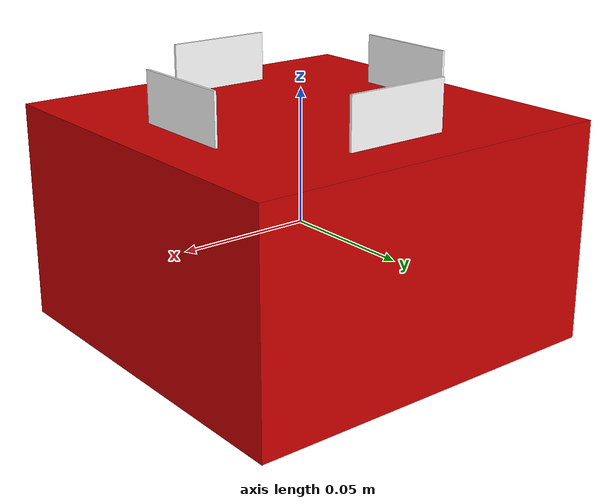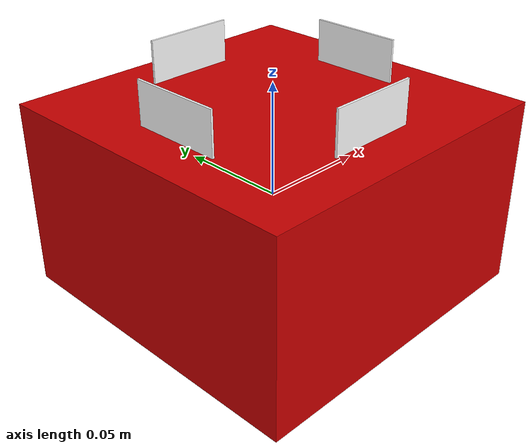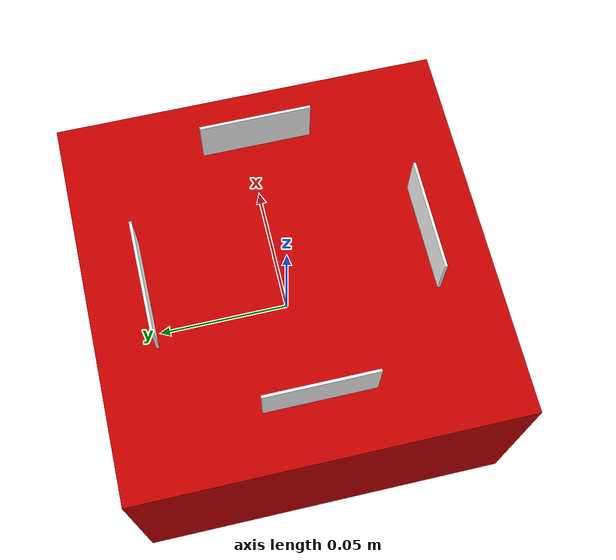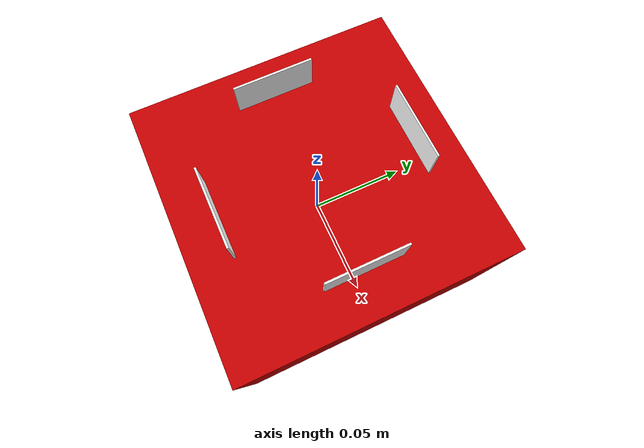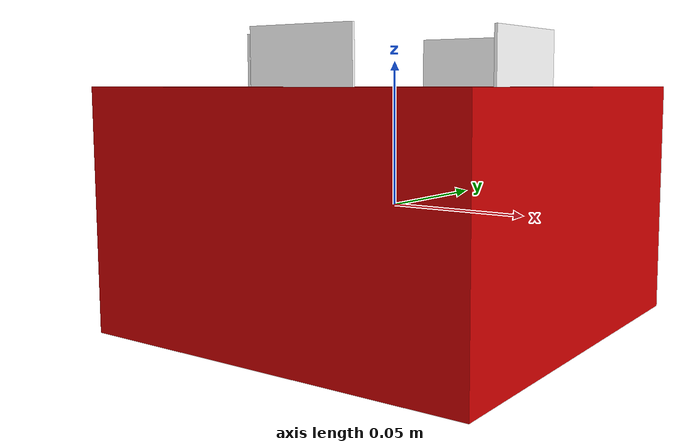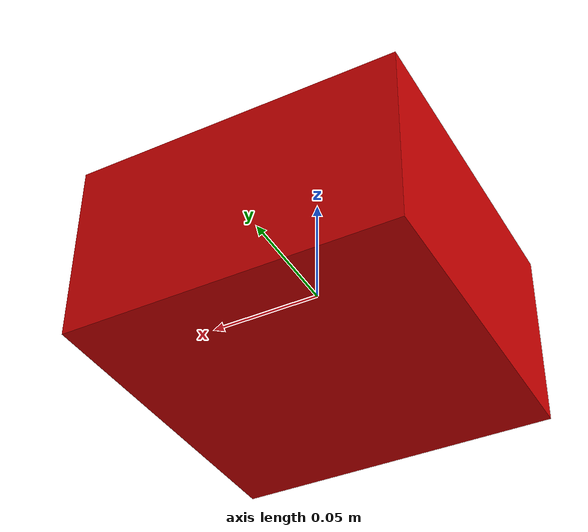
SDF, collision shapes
<?xml version="1.0" ?>
<sdf version="1.7">
  <model name="red_goal_3">

    <!-- locked postiton? -->
    <static>true</static>

    <link name="link">
      <!--pose of link relative to model-->
      <pose>0 0 0 0 0 0</pose>

      <!-- visual model-->
      <visual name="visual">
          <geometry>
          <mesh>
            <uri>model://red_goal_3/red_goal.gltf</uri>
          </mesh>
        </geometry>
            <material> <!-- red -->
              <ambient>0.80, 0.0, 0.0 1.0</ambient>
              <diffuse>0.80, 0.0, 0.0 1.0</diffuse>
              <specular>0.1 0.1 0.1 1.0</specular>
              <emissive>0 0 0 1</emissive>
          </material>
      </visual>

      <!-- collision geometry-->
      <collision name="collision">
        <geometry>
            <box>
                <size>0.1426 0.1426 0.0825</size>
            </box>
        </geometry>
      </collision>

      <inertial>
        <mass>1</mass>
        <inertia>
          <ixx>0.0002</ixx>
          <iyy>0.0002</iyy>
          <izz>0.0002</izz>
        </inertia>
      </inertial>
    </link>

    <include>
      <name>tag_0</name>
      <pose>0.05 0 0.04 1.5708 -1.5708 1.5708</pose>
      <uri>model://tag21_07_00003</uri>
    </include>

    <include>
      <name>tag_90</name>
      <pose>0 0.05 0.04 1.5708 1.5708 0</pose>
      <uri>model://tag21_07_00003</uri>
    </include>

    <include>
      <name>tag_180</name>
      <pose>-0.05 0 0.04 1.5708 1.5708 1.5708</pose>
      <uri>model://tag21_07_00003</uri>
    </include>

    <include>
      <name>tag_270</name>
      <pose>0 -0.05 0.04 1.5708 -1.5708 0</pose>
      <uri>model://tag21_07_00003</uri>
    </include>

  </model>
</sdf>

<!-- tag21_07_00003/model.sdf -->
<sdf version="1.9">
  <model name="tag21_07_00003">
    <static>true</static>
    <link name="link">
      <visual name="visual">
        <geometry>
          <box>
            <size>0.04 0.04 0.001</size>
          </box>
        </geometry>
        <material>
          <ambient>1 1 1 1</ambient>
          <diffuse>1 1 1 1</diffuse>
          <specular>0.5 0.5 0.5 1</specular>
          <pbr>
            <metal>
              <albedo_map>materials/textures/tag21_07_00003.png</albedo_map>
              <roughness>0.5</roughness>
              <metalness>0.0</metalness>
            </metal>
          </pbr>
        </material>
      </visual>
      <collision name="collision">
        <geometry>
          <box>
            <size>0.04 0.04 0.001</size>
          </box>
        </geometry>
      </collision>
    </link>
  </model>
</sdf>
